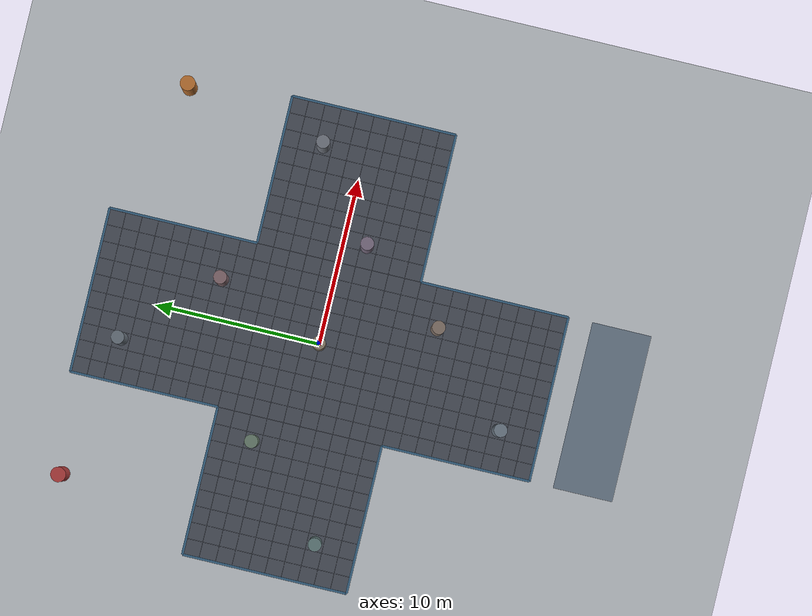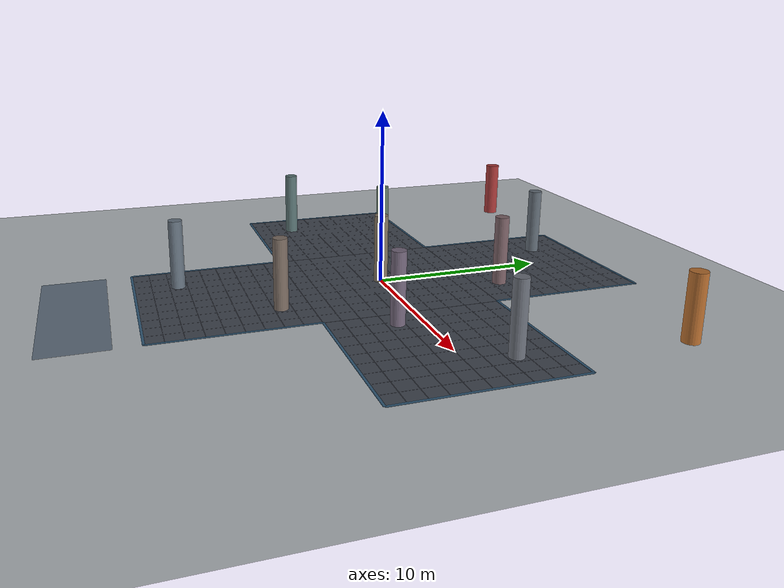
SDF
<?xml version="1.0" ?>
<sdf version="1.8">
  <world name="swarm_world">
    <!-- SPEEDUP SIMULATION: max_step_size=0.001 (1000Hz stable physics) & real_time_factor=1.0 -->
    <physics name="fast_physics" type="ode">
      <max_step_size>0.001</max_step_size>
      <real_time_factor>1.0</real_time_factor>
    </physics>

    <!-- SCENE CONFIG: Muted Architectural Lighting & Background -->
    <scene>
      <ambient>0.62 0.62 0.65 1.0</ambient>
      <background>0.78 0.80 0.83 1.0</background>
      <shadows>true</shadows>
      <grid>false</grid>
    </scene>

    <!-- PLUGIN INTI GAZEBO HARMONIC -->
    <plugin
      filename="gz-sim-physics-system"
      name="gz::sim::systems::Physics">
    </plugin>
    <plugin
      filename="gz-sim-user-commands-system"
      name="gz::sim::systems::UserCommands">
    </plugin>
    <plugin
      filename="gz-sim-scene-broadcaster-system"
      name="gz::sim::systems::SceneBroadcaster">
    </plugin>
    <plugin
      filename="gz-sim-sensors-system"
      name="gz::sim::systems::Sensors">
      <render_engine>ogre2</render_engine>
    </plugin>
    <plugin
      filename="gz-sim-wind-effects-system"
      name="gz::sim::systems::WindEffects">
      <force_approximation_scaling_factor>0.25</force_approximation_scaling_factor>
    </plugin>

    <!-- MATAHARI (SUN) - Soft Balanced Illumination -->
    <light type="directional" name="sun">
      <cast_shadows>true</cast_shadows>
      <pose>0 0 30 0 0 0</pose>
      <diffuse>0.85 0.85 0.87 1</diffuse>
      <specular>0.2 0.2 0.2 1</specular>
      <attenuation>
        <range>1000</range>
        <constant>0.9</constant>
        <linear>0.01</linear>
        <quadratic>0.001</quadratic>
      </attenuation>
      <direction>-0.4 0.2 -0.9</direction>
    </light>

    <!-- LANTAI LUAR (NEUTRAL MATTE CONCRETE EXTERIOR) -->
    <model name="ground_plane">
      <static>true</static>
      <link name="link">
        <collision name="collision">
          <geometry>
            <plane>
              <normal>0 0 1</normal>
              <size>100 100</size>
            </plane>
          </geometry>
        </collision>
        <visual name="visual">
          <geometry>
            <plane>
              <normal>0 0 1</normal>
              <size>100 100</size>
            </plane>
          </geometry>
          <material>
            <ambient>0.70 0.72 0.74 1.0</ambient>
            <diffuse>0.70 0.72 0.74 1.0</diffuse>
            <specular>0.1 0.1 0.1 1.0</specular>
          </material>
        </visual>
      </link>
    </model>

    <!-- GUI TOP-VIEW CAMERA PRESET -->
    <gui fullscreen="0">
      <camera name="user_camera">
        <pose>0.0 0.0 38.0 0.0 1.5708 1.5708</pose>
        <view_controller>orbit</view_controller>
      </camera>
    </gui>

    <!-- STAGING PAD AREA (LANDASAN AWAL 7 DRONE DI Y = -18m) -->
    <model name="staging_pad">
      <static>true</static>
      <link name="pad_link">
        <visual name="pad_v">
          <pose>0.0 -17.25 0.003 0 0 0</pose>
          <geometry><box><size>10.0 3.5 0.005</size></box></geometry>
          <material>
            <ambient>0.26 0.28 0.32 1.0</ambient>
            <diffuse>0.26 0.28 0.32 1.0</diffuse>
          </material>
        </visual>
        <visual name="pad_border">
          <pose>0.0 -17.25 0.005 0 0 0</pose>
          <geometry><box><size>10.1 3.6 0.003</size></box></geometry>
          <material>
            <ambient>0.38 0.44 0.50 1.0</ambient>
            <diffuse>0.38 0.44 0.50 1.0</diffuse>
          </material>
        </visual>
      </link>
    </model>
    <!-- VISUAL LANTAI ARENA & BORDER WILAYAH PLUS                           -->
    <model name="visual_region_floor_plus">
      <static>true</static>
      <link name="floor_link">
        <visual name="floor_box_0">
          <pose>0.0000 0.0000 0.003 0 0 0</pose>
          <geometry><box><size>10.0000 10.0000 0.005</size></box></geometry>
          <material>
            <ambient>0.26 0.28 0.32 1.0</ambient>
            <diffuse>0.26 0.28 0.32 1.0</diffuse>
            <specular>0.15 0.15 0.15 1.0</specular>
          </material>
        </visual>
        <visual name="floor_box_1">
          <pose>0.0000 9.5000 0.003 0 0 0</pose>
          <geometry><box><size>10.0000 9.0000 0.005</size></box></geometry>
          <material>
            <ambient>0.26 0.28 0.32 1.0</ambient>
            <diffuse>0.26 0.28 0.32 1.0</diffuse>
            <specular>0.15 0.15 0.15 1.0</specular>
          </material>
        </visual>
        <visual name="floor_box_2">
          <pose>0.0000 -9.5000 0.003 0 0 0</pose>
          <geometry><box><size>10.0000 9.0000 0.005</size></box></geometry>
          <material>
            <ambient>0.26 0.28 0.32 1.0</ambient>
            <diffuse>0.26 0.28 0.32 1.0</diffuse>
            <specular>0.15 0.15 0.15 1.0</specular>
          </material>
        </visual>
        <visual name="floor_box_3">
          <pose>9.5000 0.0000 0.003 0 0 0</pose>
          <geometry><box><size>9.0000 10.0000 0.005</size></box></geometry>
          <material>
            <ambient>0.26 0.28 0.32 1.0</ambient>
            <diffuse>0.26 0.28 0.32 1.0</diffuse>
            <specular>0.15 0.15 0.15 1.0</specular>
          </material>
        </visual>
        <visual name="floor_box_4">
          <pose>-9.5000 0.0000 0.003 0 0 0</pose>
          <geometry><box><size>9.0000 10.0000 0.005</size></box></geometry>
          <material>
            <ambient>0.26 0.28 0.32 1.0</ambient>
            <diffuse>0.26 0.28 0.32 1.0</diffuse>
            <specular>0.15 0.15 0.15 1.0</specular>
          </material>
        </visual>
        <visual name="grid_v_0">
          <pose>-5.00 0.0000 0.005 0 0 0</pose>
          <geometry><box><size>0.025 10.0000 0.003</size></box></geometry>
          <material>
            <ambient>0.33 0.35 0.39 1.0</ambient>
            <diffuse>0.33 0.35 0.39 1.0</diffuse>
          </material>
        </visual>
        <visual name="grid_v_1">
          <pose>-4.00 0.0000 0.005 0 0 0</pose>
          <geometry><box><size>0.025 10.0000 0.003</size></box></geometry>
          <material>
            <ambient>0.33 0.35 0.39 1.0</ambient>
            <diffuse>0.33 0.35 0.39 1.0</diffuse>
          </material>
        </visual>
        <visual name="grid_v_2">
          <pose>-3.00 0.0000 0.005 0 0 0</pose>
          <geometry><box><size>0.025 10.0000 0.003</size></box></geometry>
          <material>
            <ambient>0.33 0.35 0.39 1.0</ambient>
            <diffuse>0.33 0.35 0.39 1.0</diffuse>
          </material>
        </visual>
        <visual name="grid_v_3">
          <pose>-2.00 0.0000 0.005 0 0 0</pose>
          <geometry><box><size>0.025 10.0000 0.003</size></box></geometry>
          <material>
            <ambient>0.33 0.35 0.39 1.0</ambient>
            <diffuse>0.33 0.35 0.39 1.0</diffuse>
          </material>
        </visual>
        <visual name="grid_v_4">
          <pose>-1.00 0.0000 0.005 0 0 0</pose>
          <geometry><box><size>0.025 10.0000 0.003</size></box></geometry>
          <material>
            <ambient>0.33 0.35 0.39 1.0</ambient>
            <diffuse>0.33 0.35 0.39 1.0</diffuse>
          </material>
        </visual>
        <visual name="grid_v_5">
          <pose>0.00 0.0000 0.005 0 0 0</pose>
          <geometry><box><size>0.025 10.0000 0.003</size></box></geometry>
          <material>
            <ambient>0.33 0.35 0.39 1.0</ambient>
            <diffuse>0.33 0.35 0.39 1.0</diffuse>
          </material>
        </visual>
        <visual name="grid_v_6">
          <pose>1.00 0.0000 0.005 0 0 0</pose>
          <geometry><box><size>0.025 10.0000 0.003</size></box></geometry>
          <material>
            <ambient>0.33 0.35 0.39 1.0</ambient>
            <diffuse>0.33 0.35 0.39 1.0</diffuse>
          </material>
        </visual>
        <visual name="grid_v_7">
          <pose>2.00 0.0000 0.005 0 0 0</pose>
          <geometry><box><size>0.025 10.0000 0.003</size></box></geometry>
          <material>
            <ambient>0.33 0.35 0.39 1.0</ambient>
            <diffuse>0.33 0.35 0.39 1.0</diffuse>
          </material>
        </visual>
        <visual name="grid_v_8">
          <pose>3.00 0.0000 0.005 0 0 0</pose>
          <geometry><box><size>0.025 10.0000 0.003</size></box></geometry>
          <material>
            <ambient>0.33 0.35 0.39 1.0</ambient>
            <diffuse>0.33 0.35 0.39 1.0</diffuse>
          </material>
        </visual>
        <visual name="grid_v_9">
          <pose>4.00 0.0000 0.005 0 0 0</pose>
          <geometry><box><size>0.025 10.0000 0.003</size></box></geometry>
          <material>
            <ambient>0.33 0.35 0.39 1.0</ambient>
            <diffuse>0.33 0.35 0.39 1.0</diffuse>
          </material>
        </visual>
        <visual name="grid_v_10">
          <pose>5.00 0.0000 0.005 0 0 0</pose>
          <geometry><box><size>0.025 10.0000 0.003</size></box></geometry>
          <material>
            <ambient>0.33 0.35 0.39 1.0</ambient>
            <diffuse>0.33 0.35 0.39 1.0</diffuse>
          </material>
        </visual>
        <visual name="grid_h_11">
          <pose>0.0000 -5.00 0.005 0 0 0</pose>
          <geometry><box><size>10.0000 0.025 0.003</size></box></geometry>
          <material>
            <ambient>0.33 0.35 0.39 1.0</ambient>
            <diffuse>0.33 0.35 0.39 1.0</diffuse>
          </material>
        </visual>
        <visual name="grid_h_12">
          <pose>0.0000 -4.00 0.005 0 0 0</pose>
          <geometry><box><size>10.0000 0.025 0.003</size></box></geometry>
          <material>
            <ambient>0.33 0.35 0.39 1.0</ambient>
            <diffuse>0.33 0.35 0.39 1.0</diffuse>
          </material>
        </visual>
        <visual name="grid_h_13">
          <pose>0.0000 -3.00 0.005 0 0 0</pose>
          <geometry><box><size>10.0000 0.025 0.003</size></box></geometry>
          <material>
            <ambient>0.33 0.35 0.39 1.0</ambient>
            <diffuse>0.33 0.35 0.39 1.0</diffuse>
          </material>
        </visual>
        <visual name="grid_h_14">
          <pose>0.0000 -2.00 0.005 0 0 0</pose>
          <geometry><box><size>10.0000 0.025 0.003</size></box></geometry>
          <material>
            <ambient>0.33 0.35 0.39 1.0</ambient>
            <diffuse>0.33 0.35 0.39 1.0</diffuse>
          </material>
        </visual>
        <visual name="grid_h_15">
          <pose>0.0000 -1.00 0.005 0 0 0</pose>
          <geometry><box><size>10.0000 0.025 0.003</size></box></geometry>
          <material>
            <ambient>0.33 0.35 0.39 1.0</ambient>
            <diffuse>0.33 0.35 0.39 1.0</diffuse>
          </material>
        </visual>
        <visual name="grid_h_16">
          <pose>0.0000 0.00 0.005 0 0 0</pose>
          <geometry><box><size>10.0000 0.025 0.003</size></box></geometry>
          <material>
            <ambient>0.33 0.35 0.39 1.0</ambient>
            <diffuse>0.33 0.35 0.39 1.0</diffuse>
          </material>
        </visual>
        <visual name="grid_h_17">
          <pose>0.0000 1.00 0.005 0 0 0</pose>
          <geometry><box><size>10.0000 0.025 0.003</size></box></geometry>
          <material>
            <ambient>0.33 0.35 0.39 1.0</ambient>
            <diffuse>0.33 0.35 0.39 1.0</diffuse>
          </material>
        </visual>
        <visual name="grid_h_18">
          <pose>0.0000 2.00 0.005 0 0 0</pose>
          <geometry><box><size>10.0000 0.025 0.003</size></box></geometry>
          <material>
            <ambient>0.33 0.35 0.39 1.0</ambient>
            <diffuse>0.33 0.35 0.39 1.0</diffuse>
          </material>
        </visual>
        <visual name="grid_h_19">
          <pose>0.0000 3.00 0.005 0 0 0</pose>
          <geometry><box><size>10.0000 0.025 0.003</size></box></geometry>
          <material>
            <ambient>0.33 0.35 0.39 1.0</ambient>
            <diffuse>0.33 0.35 0.39 1.0</diffuse>
          </material>
        </visual>
        <visual name="grid_h_20">
          <pose>0.0000 4.00 0.005 0 0 0</pose>
          <geometry><box><size>10.0000 0.025 0.003</size></box></geometry>
          <material>
            <ambient>0.33 0.35 0.39 1.0</ambient>
            <diffuse>0.33 0.35 0.39 1.0</diffuse>
          </material>
        </visual>
        <visual name="grid_h_21">
          <pose>0.0000 5.00 0.005 0 0 0</pose>
          <geometry><box><size>10.0000 0.025 0.003</size></box></geometry>
          <material>
            <ambient>0.33 0.35 0.39 1.0</ambient>
            <diffuse>0.33 0.35 0.39 1.0</diffuse>
          </material>
        </visual>
        <visual name="grid_v_22">
          <pose>-5.00 9.5000 0.005 0 0 0</pose>
          <geometry><box><size>0.025 9.0000 0.003</size></box></geometry>
          <material>
            <ambient>0.33 0.35 0.39 1.0</ambient>
            <diffuse>0.33 0.35 0.39 1.0</diffuse>
          </material>
        </visual>
        <visual name="grid_v_23">
          <pose>-4.00 9.5000 0.005 0 0 0</pose>
          <geometry><box><size>0.025 9.0000 0.003</size></box></geometry>
          <material>
            <ambient>0.33 0.35 0.39 1.0</ambient>
            <diffuse>0.33 0.35 0.39 1.0</diffuse>
          </material>
        </visual>
        <visual name="grid_v_24">
          <pose>-3.00 9.5000 0.005 0 0 0</pose>
          <geometry><box><size>0.025 9.0000 0.003</size></box></geometry>
          <material>
            <ambient>0.33 0.35 0.39 1.0</ambient>
            <diffuse>0.33 0.35 0.39 1.0</diffuse>
          </material>
        </visual>
        <visual name="grid_v_25">
          <pose>-2.00 9.5000 0.005 0 0 0</pose>
          <geometry><box><size>0.025 9.0000 0.003</size></box></geometry>
          <material>
            <ambient>0.33 0.35 0.39 1.0</ambient>
            <diffuse>0.33 0.35 0.39 1.0</diffuse>
          </material>
        </visual>
        <visual name="grid_v_26">
          <pose>-1.00 9.5000 0.005 0 0 0</pose>
          <geometry><box><size>0.025 9.0000 0.003</size></box></geometry>
          <material>
            <ambient>0.33 0.35 0.39 1.0</ambient>
            <diffuse>0.33 0.35 0.39 1.0</diffuse>
          </material>
        </visual>
        <visual name="grid_v_27">
          <pose>0.00 9.5000 0.005 0 0 0</pose>
          <geometry><box><size>0.025 9.0000 0.003</size></box></geometry>
          <material>
            <ambient>0.33 0.35 0.39 1.0</ambient>
            <diffuse>0.33 0.35 0.39 1.0</diffuse>
          </material>
        </visual>
        <visual name="grid_v_28">
          <pose>1.00 9.5000 0.005 0 0 0</pose>
          <geometry><box><size>0.025 9.0000 0.003</size></box></geometry>
          <material>
            <ambient>0.33 0.35 0.39 1.0</ambient>
            <diffuse>0.33 0.35 0.39 1.0</diffuse>
          </material>
        </visual>
        <visual name="grid_v_29">
          <pose>2.00 9.5000 0.005 0 0 0</pose>
          <geometry><box><size>0.025 9.0000 0.003</size></box></geometry>
          <material>
            <ambient>0.33 0.35 0.39 1.0</ambient>
            <diffuse>0.33 0.35 0.39 1.0</diffuse>
          </material>
        </visual>
        <visual name="grid_v_30">
          <pose>3.00 9.5000 0.005 0 0 0</pose>
          <geometry><box><size>0.025 9.0000 0.003</size></box></geometry>
          <material>
            <ambient>0.33 0.35 0.39 1.0</ambient>
            <diffuse>0.33 0.35 0.39 1.0</diffuse>
          </material>
        </visual>
        <visual name="grid_v_31">
          <pose>4.00 9.5000 0.005 0 0 0</pose>
          <geometry><box><size>0.025 9.0000 0.003</size></box></geometry>
          <material>
            <ambient>0.33 0.35 0.39 1.0</ambient>
            <diffuse>0.33 0.35 0.39 1.0</diffuse>
          </material>
        </visual>
        <visual name="grid_v_32">
          <pose>5.00 9.5000 0.005 0 0 0</pose>
          <geometry><box><size>0.025 9.0000 0.003</size></box></geometry>
          <material>
            <ambient>0.33 0.35 0.39 1.0</ambient>
            <diffuse>0.33 0.35 0.39 1.0</diffuse>
          </material>
        </visual>
        <visual name="grid_h_33">
          <pose>0.0000 5.00 0.005 0 0 0</pose>
          <geometry><box><size>10.0000 0.025 0.003</size></box></geometry>
          <material>
            <ambient>0.33 0.35 0.39 1.0</ambient>
            <diffuse>0.33 0.35 0.39 1.0</diffuse>
          </material>
        </visual>
        <visual name="grid_h_34">
          <pose>0.0000 6.00 0.005 0 0 0</pose>
          <geometry><box><size>10.0000 0.025 0.003</size></box></geometry>
          <material>
            <ambient>0.33 0.35 0.39 1.0</ambient>
            <diffuse>0.33 0.35 0.39 1.0</diffuse>
          </material>
        </visual>
        <visual name="grid_h_35">
          <pose>0.0000 7.00 0.005 0 0 0</pose>
          <geometry><box><size>10.0000 0.025 0.003</size></box></geometry>
          <material>
            <ambient>0.33 0.35 0.39 1.0</ambient>
            <diffuse>0.33 0.35 0.39 1.0</diffuse>
          </material>
        </visual>
        <visual name="grid_h_36">
          <pose>0.0000 8.00 0.005 0 0 0</pose>
          <geometry><box><size>10.0000 0.025 0.003</size></box></geometry>
          <material>
            <ambient>0.33 0.35 0.39 1.0</ambient>
            <diffuse>0.33 0.35 0.39 1.0</diffuse>
          </material>
        </visual>
        <visual name="grid_h_37">
          <pose>0.0000 9.00 0.005 0 0 0</pose>
          <geometry><box><size>10.0000 0.025 0.003</size></box></geometry>
          <material>
            <ambient>0.33 0.35 0.39 1.0</ambient>
            <diffuse>0.33 0.35 0.39 1.0</diffuse>
          </material>
        </visual>
        <visual name="grid_h_38">
          <pose>0.0000 10.00 0.005 0 0 0</pose>
          <geometry><box><size>10.0000 0.025 0.003</size></box></geometry>
          <material>
            <ambient>0.33 0.35 0.39 1.0</ambient>
            <diffuse>0.33 0.35 0.39 1.0</diffuse>
          </material>
        </visual>
        <visual name="grid_h_39">
          <pose>0.0000 11.00 0.005 0 0 0</pose>
          <geometry><box><size>10.0000 0.025 0.003</size></box></geometry>
          <material>
            <ambient>0.33 0.35 0.39 1.0</ambient>
            <diffuse>0.33 0.35 0.39 1.0</diffuse>
          </material>
        </visual>
        <visual name="grid_h_40">
          <pose>0.0000 12.00 0.005 0 0 0</pose>
          <geometry><box><size>10.0000 0.025 0.003</size></box></geometry>
          <material>
            <ambient>0.33 0.35 0.39 1.0</ambient>
            <diffuse>0.33 0.35 0.39 1.0</diffuse>
          </material>
        </visual>
        <visual name="grid_h_41">
          <pose>0.0000 13.00 0.005 0 0 0</pose>
          <geometry><box><size>10.0000 0.025 0.003</size></box></geometry>
          <material>
            <ambient>0.33 0.35 0.39 1.0</ambient>
            <diffuse>0.33 0.35 0.39 1.0</diffuse>
          </material>
        </visual>
        <visual name="grid_h_42">
          <pose>0.0000 14.00 0.005 0 0 0</pose>
          <geometry><box><size>10.0000 0.025 0.003</size></box></geometry>
          <material>
            <ambient>0.33 0.35 0.39 1.0</ambient>
            <diffuse>0.33 0.35 0.39 1.0</diffuse>
          </material>
        </visual>
        <visual name="grid_v_43">
          <pose>-5.00 -9.5000 0.005 0 0 0</pose>
          <geometry><box><size>0.025 9.0000 0.003</size></box></geometry>
          <material>
            <ambient>0.33 0.35 0.39 1.0</ambient>
            <diffuse>0.33 0.35 0.39 1.0</diffuse>
          </material>
        </visual>
        <visual name="grid_v_44">
          <pose>-4.00 -9.5000 0.005 0 0 0</pose>
          <geometry><box><size>0.025 9.0000 0.003</size></box></geometry>
          <material>
            <ambient>0.33 0.35 0.39 1.0</ambient>
            <diffuse>0.33 0.35 0.39 1.0</diffuse>
          </material>
        </visual>
        <visual name="grid_v_45">
          <pose>-3.00 -9.5000 0.005 0 0 0</pose>
          <geometry><box><size>0.025 9.0000 0.003</size></box></geometry>
          <material>
            <ambient>0.33 0.35 0.39 1.0</ambient>
            <diffuse>0.33 0.35 0.39 1.0</diffuse>
          </material>
        </visual>
        <visual name="grid_v_46">
          <pose>-2.00 -9.5000 0.005 0 0 0</pose>
          <geometry><box><size>0.025 9.0000 0.003</size></box></geometry>
          <material>
            <ambient>0.33 0.35 0.39 1.0</ambient>
            <diffuse>0.33 0.35 0.39 1.0</diffuse>
          </material>
        </visual>
        <visual name="grid_v_47">
          <pose>-1.00 -9.5000 0.005 0 0 0</pose>
          <geometry><box><size>0.025 9.0000 0.003</size></box></geometry>
          <material>
            <ambient>0.33 0.35 0.39 1.0</ambient>
            <diffuse>0.33 0.35 0.39 1.0</diffuse>
          </material>
        </visual>
        <visual name="grid_v_48">
          <pose>0.00 -9.5000 0.005 0 0 0</pose>
          <geometry><box><size>0.025 9.0000 0.003</size></box></geometry>
          <material>
            <ambient>0.33 0.35 0.39 1.0</ambient>
            <diffuse>0.33 0.35 0.39 1.0</diffuse>
          </material>
        </visual>
        <visual name="grid_v_49">
          <pose>1.00 -9.5000 0.005 0 0 0</pose>
          <geometry><box><size>0.025 9.0000 0.003</size></box></geometry>
          <material>
            <ambient>0.33 0.35 0.39 1.0</ambient>
            <diffuse>0.33 0.35 0.39 1.0</diffuse>
          </material>
        </visual>
        <visual name="grid_v_50">
          <pose>2.00 -9.5000 0.005 0 0 0</pose>
          <geometry><box><size>0.025 9.0000 0.003</size></box></geometry>
          <material>
            <ambient>0.33 0.35 0.39 1.0</ambient>
            <diffuse>0.33 0.35 0.39 1.0</diffuse>
          </material>
        </visual>
        <visual name="grid_v_51">
          <pose>3.00 -9.5000 0.005 0 0 0</pose>
          <geometry><box><size>0.025 9.0000 0.003</size></box></geometry>
          <material>
            <ambient>0.33 0.35 0.39 1.0</ambient>
            <diffuse>0.33 0.35 0.39 1.0</diffuse>
          </material>
        </visual>
        <visual name="grid_v_52">
          <pose>4.00 -9.5000 0.005 0 0 0</pose>
          <geometry><box><size>0.025 9.0000 0.003</size></box></geometry>
          <material>
            <ambient>0.33 0.35 0.39 1.0</ambient>
            <diffuse>0.33 0.35 0.39 1.0</diffuse>
          </material>
        </visual>
        <visual name="grid_v_53">
          <pose>5.00 -9.5000 0.005 0 0 0</pose>
          <geometry><box><size>0.025 9.0000 0.003</size></box></geometry>
          <material>
            <ambient>0.33 0.35 0.39 1.0</ambient>
            <diffuse>0.33 0.35 0.39 1.0</diffuse>
          </material>
        </visual>
        <visual name="grid_h_54">
          <pose>0.0000 -14.00 0.005 0 0 0</pose>
          <geometry><box><size>10.0000 0.025 0.003</size></box></geometry>
          <material>
            <ambient>0.33 0.35 0.39 1.0</ambient>
            <diffuse>0.33 0.35 0.39 1.0</diffuse>
          </material>
        </visual>
        <visual name="grid_h_55">
          <pose>0.0000 -13.00 0.005 0 0 0</pose>
          <geometry><box><size>10.0000 0.025 0.003</size></box></geometry>
          <material>
            <ambient>0.33 0.35 0.39 1.0</ambient>
            <diffuse>0.33 0.35 0.39 1.0</diffuse>
          </material>
        </visual>
        <visual name="grid_h_56">
          <pose>0.0000 -12.00 0.005 0 0 0</pose>
          <geometry><box><size>10.0000 0.025 0.003</size></box></geometry>
          <material>
            <ambient>0.33 0.35 0.39 1.0</ambient>
            <diffuse>0.33 0.35 0.39 1.0</diffuse>
          </material>
        </visual>
        <visual name="grid_h_57">
          <pose>0.0000 -11.00 0.005 0 0 0</pose>
          <geometry><box><size>10.0000 0.025 0.003</size></box></geometry>
          <material>
            <ambient>0.33 0.35 0.39 1.0</ambient>
            <diffuse>0.33 0.35 0.39 1.0</diffuse>
          </material>
        </visual>
        <visual name="grid_h_58">
          <pose>0.0000 -10.00 0.005 0 0 0</pose>
          <geometry><box><size>10.0000 0.025 0.003</size></box></geometry>
          <material>
            <ambient>0.33 0.35 0.39 1.0</ambient>
            <diffuse>0.33 0.35 0.39 1.0</diffuse>
          </material>
        </visual>
        <visual name="grid_h_59">
          <pose>0.0000 -9.00 0.005 0 0 0</pose>
          <geometry><box><size>10.0000 0.025 0.003</size></box></geometry>
          <material>
            <ambient>0.33 0.35 0.39 1.0</ambient>
            <diffuse>0.33 0.35 0.39 1.0</diffuse>
          </material>
        </visual>
        <visual name="grid_h_60">
          <pose>0.0000 -8.00 0.005 0 0 0</pose>
          <geometry><box><size>10.0000 0.025 0.003</size></box></geometry>
          <material>
            <ambient>0.33 0.35 0.39 1.0</ambient>
            <diffuse>0.33 0.35 0.39 1.0</diffuse>
          </material>
        </visual>
        <visual name="grid_h_61">
          <pose>0.0000 -7.00 0.005 0 0 0</pose>
          <geometry><box><size>10.0000 0.025 0.003</size></box></geometry>
          <material>
            <ambient>0.33 0.35 0.39 1.0</ambient>
            <diffuse>0.33 0.35 0.39 1.0</diffuse>
          </material>
        </visual>
        <visual name="grid_h_62">
          <pose>0.0000 -6.00 0.005 0 0 0</pose>
          <geometry><box><size>10.0000 0.025 0.003</size></box></geometry>
          <material>
            <ambient>0.33 0.35 0.39 1.0</ambient>
            <diffuse>0.33 0.35 0.39 1.0</diffuse>
          </material>
        </visual>
        <visual name="grid_h_63">
          <pose>0.0000 -5.00 0.005 0 0 0</pose>
          <geometry><box><size>10.0000 0.025 0.003</size></box></geometry>
          <material>
            <ambient>0.33 0.35 0.39 1.0</ambient>
            <diffuse>0.33 0.35 0.39 1.0</diffuse>
          </material>
        </visual>
        <visual name="grid_v_64">
          <pose>5.00 0.0000 0.005 0 0 0</pose>
          <geometry><box><size>0.025 10.0000 0.003</size></box></geometry>
          <material>
            <ambient>0.33 0.35 0.39 1.0</ambient>
            <diffuse>0.33 0.35 0.39 1.0</diffuse>
          </material>
        </visual>
        <visual name="grid_v_65">
          <pose>6.00 0.0000 0.005 0 0 0</pose>
          <geometry><box><size>0.025 10.0000 0.003</size></box></geometry>
          <material>
            <ambient>0.33 0.35 0.39 1.0</ambient>
            <diffuse>0.33 0.35 0.39 1.0</diffuse>
          </material>
        </visual>
        <visual name="grid_v_66">
          <pose>7.00 0.0000 0.005 0 0 0</pose>
          <geometry><box><size>0.025 10.0000 0.003</size></box></geometry>
          <material>
            <ambient>0.33 0.35 0.39 1.0</ambient>
            <diffuse>0.33 0.35 0.39 1.0</diffuse>
          </material>
        </visual>
        <visual name="grid_v_67">
          <pose>8.00 0.0000 0.005 0 0 0</pose>
          <geometry><box><size>0.025 10.0000 0.003</size></box></geometry>
          <material>
            <ambient>0.33 0.35 0.39 1.0</ambient>
            <diffuse>0.33 0.35 0.39 1.0</diffuse>
          </material>
        </visual>
        <visual name="grid_v_68">
          <pose>9.00 0.0000 0.005 0 0 0</pose>
          <geometry><box><size>0.025 10.0000 0.003</size></box></geometry>
          <material>
            <ambient>0.33 0.35 0.39 1.0</ambient>
            <diffuse>0.33 0.35 0.39 1.0</diffuse>
          </material>
        </visual>
        <visual name="grid_v_69">
          <pose>10.00 0.0000 0.005 0 0 0</pose>
          <geometry><box><size>0.025 10.0000 0.003</size></box></geometry>
          <material>
            <ambient>0.33 0.35 0.39 1.0</ambient>
            <diffuse>0.33 0.35 0.39 1.0</diffuse>
          </material>
        </visual>
        <visual name="grid_v_70">
          <pose>11.00 0.0000 0.005 0 0 0</pose>
          <geometry><box><size>0.025 10.0000 0.003</size></box></geometry>
          <material>
            <ambient>0.33 0.35 0.39 1.0</ambient>
            <diffuse>0.33 0.35 0.39 1.0</diffuse>
          </material>
        </visual>
        <visual name="grid_v_71">
          <pose>12.00 0.0000 0.005 0 0 0</pose>
          <geometry><box><size>0.025 10.0000 0.003</size></box></geometry>
          <material>
            <ambient>0.33 0.35 0.39 1.0</ambient>
            <diffuse>0.33 0.35 0.39 1.0</diffuse>
          </material>
        </visual>
        <visual name="grid_v_72">
          <pose>13.00 0.0000 0.005 0 0 0</pose>
          <geometry><box><size>0.025 10.0000 0.003</size></box></geometry>
          <material>
            <ambient>0.33 0.35 0.39 1.0</ambient>
            <diffuse>0.33 0.35 0.39 1.0</diffuse>
          </material>
        </visual>
        <visual name="grid_v_73">
          <pose>14.00 0.0000 0.005 0 0 0</pose>
          <geometry><box><size>0.025 10.0000 0.003</size></box></geometry>
          <material>
            <ambient>0.33 0.35 0.39 1.0</ambient>
            <diffuse>0.33 0.35 0.39 1.0</diffuse>
          </material>
        </visual>
        <visual name="grid_h_74">
          <pose>9.5000 -5.00 0.005 0 0 0</pose>
          <geometry><box><size>9.0000 0.025 0.003</size></box></geometry>
          <material>
            <ambient>0.33 0.35 0.39 1.0</ambient>
            <diffuse>0.33 0.35 0.39 1.0</diffuse>
          </material>
        </visual>
        <visual name="grid_h_75">
          <pose>9.5000 -4.00 0.005 0 0 0</pose>
          <geometry><box><size>9.0000 0.025 0.003</size></box></geometry>
          <material>
            <ambient>0.33 0.35 0.39 1.0</ambient>
            <diffuse>0.33 0.35 0.39 1.0</diffuse>
          </material>
        </visual>
        <visual name="grid_h_76">
          <pose>9.5000 -3.00 0.005 0 0 0</pose>
          <geometry><box><size>9.0000 0.025 0.003</size></box></geometry>
          <material>
            <ambient>0.33 0.35 0.39 1.0</ambient>
            <diffuse>0.33 0.35 0.39 1.0</diffuse>
          </material>
        </visual>
        <visual name="grid_h_77">
          <pose>9.5000 -2.00 0.005 0 0 0</pose>
          <geometry><box><size>9.0000 0.025 0.003</size></box></geometry>
          <material>
            <ambient>0.33 0.35 0.39 1.0</ambient>
            <diffuse>0.33 0.35 0.39 1.0</diffuse>
          </material>
        </visual>
        <visual name="grid_h_78">
          <pose>9.5000 -1.00 0.005 0 0 0</pose>
          <geometry><box><size>9.0000 0.025 0.003</size></box></geometry>
          <material>
            <ambient>0.33 0.35 0.39 1.0</ambient>
            <diffuse>0.33 0.35 0.39 1.0</diffuse>
          </material>
        </visual>
        <visual name="grid_h_79">
          <pose>9.5000 0.00 0.005 0 0 0</pose>
          <geometry><box><size>9.0000 0.025 0.003</size></box></geometry>
          <material>
            <ambient>0.33 0.35 0.39 1.0</ambient>
            <diffuse>0.33 0.35 0.39 1.0</diffuse>
          </material>
        </visual>
        <visual name="grid_h_80">
          <pose>9.5000 1.00 0.005 0 0 0</pose>
          <geometry><box><size>9.0000 0.025 0.003</size></box></geometry>
          <material>
            <ambient>0.33 0.35 0.39 1.0</ambient>
            <diffuse>0.33 0.35 0.39 1.0</diffuse>
          </material>
        </visual>
        <visual name="grid_h_81">
          <pose>9.5000 2.00 0.005 0 0 0</pose>
          <geometry><box><size>9.0000 0.025 0.003</size></box></geometry>
          <material>
            <ambient>0.33 0.35 0.39 1.0</ambient>
            <diffuse>0.33 0.35 0.39 1.0</diffuse>
          </material>
        </visual>
        <visual name="grid_h_82">
          <pose>9.5000 3.00 0.005 0 0 0</pose>
          <geometry><box><size>9.0000 0.025 0.003</size></box></geometry>
          <material>
            <ambient>0.33 0.35 0.39 1.0</ambient>
            <diffuse>0.33 0.35 0.39 1.0</diffuse>
          </material>
        </visual>
        <visual name="grid_h_83">
          <pose>9.5000 4.00 0.005 0 0 0</pose>
          <geometry><box><size>9.0000 0.025 0.003</size></box></geometry>
          <material>
            <ambient>0.33 0.35 0.39 1.0</ambient>
            <diffuse>0.33 0.35 0.39 1.0</diffuse>
          </material>
        </visual>
        <visual name="grid_h_84">
          <pose>9.5000 5.00 0.005 0 0 0</pose>
          <geometry><box><size>9.0000 0.025 0.003</size></box></geometry>
          <material>
            <ambient>0.33 0.35 0.39 1.0</ambient>
            <diffuse>0.33 0.35 0.39 1.0</diffuse>
          </material>
        </visual>
        <visual name="grid_v_85">
          <pose>-14.00 0.0000 0.005 0 0 0</pose>
          <geometry><box><size>0.025 10.0000 0.003</size></box></geometry>
          <material>
            <ambient>0.33 0.35 0.39 1.0</ambient>
            <diffuse>0.33 0.35 0.39 1.0</diffuse>
          </material>
        </visual>
        <visual name="grid_v_86">
          <pose>-13.00 0.0000 0.005 0 0 0</pose>
          <geometry><box><size>0.025 10.0000 0.003</size></box></geometry>
          <material>
            <ambient>0.33 0.35 0.39 1.0</ambient>
            <diffuse>0.33 0.35 0.39 1.0</diffuse>
          </material>
        </visual>
        <visual name="grid_v_87">
          <pose>-12.00 0.0000 0.005 0 0 0</pose>
          <geometry><box><size>0.025 10.0000 0.003</size></box></geometry>
          <material>
            <ambient>0.33 0.35 0.39 1.0</ambient>
            <diffuse>0.33 0.35 0.39 1.0</diffuse>
          </material>
        </visual>
        <visual name="grid_v_88">
          <pose>-11.00 0.0000 0.005 0 0 0</pose>
          <geometry><box><size>0.025 10.0000 0.003</size></box></geometry>
          <material>
            <ambient>0.33 0.35 0.39 1.0</ambient>
            <diffuse>0.33 0.35 0.39 1.0</diffuse>
          </material>
        </visual>
        <visual name="grid_v_89">
          <pose>-10.00 0.0000 0.005 0 0 0</pose>
          <geometry><box><size>0.025 10.0000 0.003</size></box></geometry>
          <material>
            <ambient>0.33 0.35 0.39 1.0</ambient>
            <diffuse>0.33 0.35 0.39 1.0</diffuse>
          </material>
        </visual>
        <visual name="grid_v_90">
          <pose>-9.00 0.0000 0.005 0 0 0</pose>
          <geometry><box><size>0.025 10.0000 0.003</size></box></geometry>
          <material>
            <ambient>0.33 0.35 0.39 1.0</ambient>
            <diffuse>0.33 0.35 0.39 1.0</diffuse>
          </material>
        </visual>
        <visual name="grid_v_91">
          <pose>-8.00 0.0000 0.005 0 0 0</pose>
          <geometry><box><size>0.025 10.0000 0.003</size></box></geometry>
          <material>
            <ambient>0.33 0.35 0.39 1.0</ambient>
            <diffuse>0.33 0.35 0.39 1.0</diffuse>
          </material>
        </visual>
        <visual name="grid_v_92">
          <pose>-7.00 0.0000 0.005 0 0 0</pose>
          <geometry><box><size>0.025 10.0000 0.003</size></box></geometry>
          <material>
            <ambient>0.33 0.35 0.39 1.0</ambient>
            <diffuse>0.33 0.35 0.39 1.0</diffuse>
          </material>
        </visual>
        <visual name="grid_v_93">
          <pose>-6.00 0.0000 0.005 0 0 0</pose>
          <geometry><box><size>0.025 10.0000 0.003</size></box></geometry>
          <material>
            <ambient>0.33 0.35 0.39 1.0</ambient>
            <diffuse>0.33 0.35 0.39 1.0</diffuse>
          </material>
        </visual>
        <visual name="grid_v_94">
          <pose>-5.00 0.0000 0.005 0 0 0</pose>
          <geometry><box><size>0.025 10.0000 0.003</size></box></geometry>
          <material>
            <ambient>0.33 0.35 0.39 1.0</ambient>
            <diffuse>0.33 0.35 0.39 1.0</diffuse>
          </material>
        </visual>
        <visual name="grid_h_95">
          <pose>-9.5000 -5.00 0.005 0 0 0</pose>
          <geometry><box><size>9.0000 0.025 0.003</size></box></geometry>
          <material>
            <ambient>0.33 0.35 0.39 1.0</ambient>
            <diffuse>0.33 0.35 0.39 1.0</diffuse>
          </material>
        </visual>
        <visual name="grid_h_96">
          <pose>-9.5000 -4.00 0.005 0 0 0</pose>
          <geometry><box><size>9.0000 0.025 0.003</size></box></geometry>
          <material>
            <ambient>0.33 0.35 0.39 1.0</ambient>
            <diffuse>0.33 0.35 0.39 1.0</diffuse>
          </material>
        </visual>
        <visual name="grid_h_97">
          <pose>-9.5000 -3.00 0.005 0 0 0</pose>
          <geometry><box><size>9.0000 0.025 0.003</size></box></geometry>
          <material>
            <ambient>0.33 0.35 0.39 1.0</ambient>
            <diffuse>0.33 0.35 0.39 1.0</diffuse>
          </material>
        </visual>
        <visual name="grid_h_98">
          <pose>-9.5000 -2.00 0.005 0 0 0</pose>
          <geometry><box><size>9.0000 0.025 0.003</size></box></geometry>
          <material>
            <ambient>0.33 0.35 0.39 1.0</ambient>
            <diffuse>0.33 0.35 0.39 1.0</diffuse>
          </material>
        </visual>
        <visual name="grid_h_99">
          <pose>-9.5000 -1.00 0.005 0 0 0</pose>
          <geometry><box><size>9.0000 0.025 0.003</size></box></geometry>
          <material>
            <ambient>0.33 0.35 0.39 1.0</ambient>
            <diffuse>0.33 0.35 0.39 1.0</diffuse>
          </material>
        </visual>
        <visual name="grid_h_100">
          <pose>-9.5000 0.00 0.005 0 0 0</pose>
          <geometry><box><size>9.0000 0.025 0.003</size></box></geometry>
          <material>
            <ambient>0.33 0.35 0.39 1.0</ambient>
            <diffuse>0.33 0.35 0.39 1.0</diffuse>
          </material>
        </visual>
        <visual name="grid_h_101">
          <pose>-9.5000 1.00 0.005 0 0 0</pose>
          <geometry><box><size>9.0000 0.025 0.003</size></box></geometry>
          <material>
            <ambient>0.33 0.35 0.39 1.0</ambient>
            <diffuse>0.33 0.35 0.39 1.0</diffuse>
          </material>
        </visual>
        <visual name="grid_h_102">
          <pose>-9.5000 2.00 0.005 0 0 0</pose>
          <geometry><box><size>9.0000 0.025 0.003</size></box></geometry>
          <material>
            <ambient>0.33 0.35 0.39 1.0</ambient>
            <diffuse>0.33 0.35 0.39 1.0</diffuse>
          </material>
        </visual>
        <visual name="grid_h_103">
          <pose>-9.5000 3.00 0.005 0 0 0</pose>
          <geometry><box><size>9.0000 0.025 0.003</size></box></geometry>
          <material>
            <ambient>0.33 0.35 0.39 1.0</ambient>
            <diffuse>0.33 0.35 0.39 1.0</diffuse>
          </material>
        </visual>
        <visual name="grid_h_104">
          <pose>-9.5000 4.00 0.005 0 0 0</pose>
          <geometry><box><size>9.0000 0.025 0.003</size></box></geometry>
          <material>
            <ambient>0.33 0.35 0.39 1.0</ambient>
            <diffuse>0.33 0.35 0.39 1.0</diffuse>
          </material>
        </visual>
        <visual name="grid_h_105">
          <pose>-9.5000 5.00 0.005 0 0 0</pose>
          <geometry><box><size>9.0000 0.025 0.003</size></box></geometry>
          <material>
            <ambient>0.33 0.35 0.39 1.0</ambient>
            <diffuse>0.33 0.35 0.39 1.0</diffuse>
          </material>
        </visual>
      </link>
    </model>

    <!-- BORDER PEMBATAS KELILING (MUTED STEEL BLUE / SLATE CURB) -->
    <model name="region_perimeter_border_plus">
      <static>true</static>
      <link name="border_link">
        <visual name="border_edge_0">
          <pose>0.0000 -14.0000 0.015 0 0 0.0000</pose>
          <geometry><box><size>10.0000 0.14 0.025</size></box></geometry>
          <material>
            <ambient>0.20 0.36 0.48 1.0</ambient>
            <diffuse>0.20 0.36 0.48 1.0</diffuse>
            <specular>0.25 0.25 0.25 1.0</specular>
          </material>
        </visual>
        <visual name="border_edge_1">
          <pose>5.0000 -9.5000 0.015 0 0 1.5708</pose>
          <geometry><box><size>9.0000 0.14 0.025</size></box></geometry>
          <material>
            <ambient>0.20 0.36 0.48 1.0</ambient>
            <diffuse>0.20 0.36 0.48 1.0</diffuse>
            <specular>0.25 0.25 0.25 1.0</specular>
          </material>
        </visual>
        <visual name="border_edge_2">
          <pose>9.5000 -5.0000 0.015 0 0 0.0000</pose>
          <geometry><box><size>9.0000 0.14 0.025</size></box></geometry>
          <material>
            <ambient>0.20 0.36 0.48 1.0</ambient>
            <diffuse>0.20 0.36 0.48 1.0</diffuse>
            <specular>0.25 0.25 0.25 1.0</specular>
          </material>
        </visual>
        <visual name="border_edge_3">
          <pose>14.0000 0.0000 0.015 0 0 1.5708</pose>
          <geometry><box><size>10.0000 0.14 0.025</size></box></geometry>
          <material>
            <ambient>0.20 0.36 0.48 1.0</ambient>
            <diffuse>0.20 0.36 0.48 1.0</diffuse>
            <specular>0.25 0.25 0.25 1.0</specular>
          </material>
        </visual>
        <visual name="border_edge_4">
          <pose>9.5000 5.0000 0.015 0 0 3.1416</pose>
          <geometry><box><size>9.0000 0.14 0.025</size></box></geometry>
          <material>
            <ambient>0.20 0.36 0.48 1.0</ambient>
            <diffuse>0.20 0.36 0.48 1.0</diffuse>
            <specular>0.25 0.25 0.25 1.0</specular>
          </material>
        </visual>
        <visual name="border_edge_5">
          <pose>5.0000 9.5000 0.015 0 0 1.5708</pose>
          <geometry><box><size>9.0000 0.14 0.025</size></box></geometry>
          <material>
            <ambient>0.20 0.36 0.48 1.0</ambient>
            <diffuse>0.20 0.36 0.48 1.0</diffuse>
            <specular>0.25 0.25 0.25 1.0</specular>
          </material>
        </visual>
        <visual name="border_edge_6">
          <pose>0.0000 14.0000 0.015 0 0 3.1416</pose>
          <geometry><box><size>10.0000 0.14 0.025</size></box></geometry>
          <material>
            <ambient>0.20 0.36 0.48 1.0</ambient>
            <diffuse>0.20 0.36 0.48 1.0</diffuse>
            <specular>0.25 0.25 0.25 1.0</specular>
          </material>
        </visual>
        <visual name="border_edge_7">
          <pose>-5.0000 9.5000 0.015 0 0 -1.5708</pose>
          <geometry><box><size>9.0000 0.14 0.025</size></box></geometry>
          <material>
            <ambient>0.20 0.36 0.48 1.0</ambient>
            <diffuse>0.20 0.36 0.48 1.0</diffuse>
            <specular>0.25 0.25 0.25 1.0</specular>
          </material>
        </visual>
        <visual name="border_edge_8">
          <pose>-9.5000 5.0000 0.015 0 0 3.1416</pose>
          <geometry><box><size>9.0000 0.14 0.025</size></box></geometry>
          <material>
            <ambient>0.20 0.36 0.48 1.0</ambient>
            <diffuse>0.20 0.36 0.48 1.0</diffuse>
            <specular>0.25 0.25 0.25 1.0</specular>
          </material>
        </visual>
        <visual name="border_edge_9">
          <pose>-14.0000 0.0000 0.015 0 0 -1.5708</pose>
          <geometry><box><size>10.0000 0.14 0.025</size></box></geometry>
          <material>
            <ambient>0.20 0.36 0.48 1.0</ambient>
            <diffuse>0.20 0.36 0.48 1.0</diffuse>
            <specular>0.25 0.25 0.25 1.0</specular>
          </material>
        </visual>
        <visual name="border_edge_10">
          <pose>-9.5000 -5.0000 0.015 0 0 0.0000</pose>
          <geometry><box><size>9.0000 0.14 0.025</size></box></geometry>
          <material>
            <ambient>0.20 0.36 0.48 1.0</ambient>
            <diffuse>0.20 0.36 0.48 1.0</diffuse>
            <specular>0.25 0.25 0.25 1.0</specular>
          </material>
        </visual>
        <visual name="border_edge_11">
          <pose>-5.0000 -9.5000 0.015 0 0 -1.5708</pose>
          <geometry><box><size>9.0000 0.14 0.025</size></box></geometry>
          <material>
            <ambient>0.20 0.36 0.48 1.0</ambient>
            <diffuse>0.20 0.36 0.48 1.0</diffuse>
            <specular>0.25 0.25 0.25 1.0</specular>
          </material>
        </visual>
      </link>
    </model>
    <model name="static_obs_301">
      <static>true</static>
      <pose>-2.5000 -11.5000 2.0000 0 0 0</pose>
      <link name="link">
        <collision name="collision">
          <geometry><cylinder><radius>0.4000</radius><length>4.0000</length></cylinder></geometry>
        </collision>
        <visual name="visual">
          <geometry><cylinder><radius>0.4000</radius><length>4.0000</length></cylinder></geometry>
          <material>
            <ambient>0.40 0.45 0.50 1.0</ambient>
            <diffuse>0.40 0.45 0.50 1.0</diffuse>
            <specular>0.3 0.3 0.3 1.0</specular>
          </material>
        </visual>
      </link>
    </model>

    <model name="static_obs_302">
      <static>true</static>
      <pose>2.5000 -6.6000 2.0000 0 0 0</pose>
      <link name="link">
        <collision name="collision">
          <geometry><cylinder><radius>0.4000</radius><length>4.0000</length></cylinder></geometry>
        </collision>
        <visual name="visual">
          <geometry><cylinder><radius>0.4000</radius><length>4.0000</length></cylinder></geometry>
          <material>
            <ambient>0.48 0.42 0.38 1.0</ambient>
            <diffuse>0.48 0.42 0.38 1.0</diffuse>
            <specular>0.3 0.3 0.3 1.0</specular>
          </material>
        </visual>
      </link>
    </model>

    <model name="static_obs_303">
      <static>true</static>
      <pose>-11.5000 -2.5000 2.0000 0 0 0</pose>
      <link name="link">
        <collision name="collision">
          <geometry><cylinder><radius>0.4000</radius><length>4.0000</length></cylinder></geometry>
        </collision>
        <visual name="visual">
          <geometry><cylinder><radius>0.4000</radius><length>4.0000</length></cylinder></geometry>
          <material>
            <ambient>0.35 0.45 0.45 1.0</ambient>
            <diffuse>0.35 0.45 0.45 1.0</diffuse>
            <specular>0.3 0.3 0.3 1.0</specular>
          </material>
        </visual>
      </link>
    </model>

    <model name="static_obs_304">
      <static>true</static>
      <pose>6.3000 -1.4000 2.0000 0 0 0</pose>
      <link name="link">
        <collision name="collision">
          <geometry><cylinder><radius>0.4000</radius><length>4.0000</length></cylinder></geometry>
        </collision>
        <visual name="visual">
          <geometry><cylinder><radius>0.4000</radius><length>4.0000</length></cylinder></geometry>
          <material>
            <ambient>0.45 0.40 0.48 1.0</ambient>
            <diffuse>0.45 0.40 0.48 1.0</diffuse>
            <specular>0.3 0.3 0.3 1.0</specular>
          </material>
        </visual>
      </link>
    </model>

    <model name="static_obs_305">
      <static>true</static>
      <pose>0.0000 -0.0000 2.0000 0 0 0</pose>
      <link name="link">
        <collision name="collision">
          <geometry><cylinder><radius>0.4000</radius><length>4.0000</length></cylinder></geometry>
        </collision>
        <visual name="visual">
          <geometry><cylinder><radius>0.4000</radius><length>4.0000</length></cylinder></geometry>
          <material>
            <ambient>0.50 0.45 0.38 1.0</ambient>
            <diffuse>0.50 0.45 0.38 1.0</diffuse>
            <specular>0.3 0.3 0.3 1.0</specular>
          </material>
        </visual>
      </link>
    </model>

    <model name="static_obs_306">
      <static>true</static>
      <pose>-6.5000 2.5000 2.0000 0 0 0</pose>
      <link name="link">
        <collision name="collision">
          <geometry><cylinder><radius>0.4000</radius><length>4.0000</length></cylinder></geometry>
        </collision>
        <visual name="visual">
          <geometry><cylinder><radius>0.4000</radius><length>4.0000</length></cylinder></geometry>
          <material>
            <ambient>0.38 0.46 0.40 1.0</ambient>
            <diffuse>0.38 0.46 0.40 1.0</diffuse>
            <specular>0.3 0.3 0.3 1.0</specular>
          </material>
        </visual>
      </link>
    </model>

    <model name="static_obs_307">
      <static>true</static>
      <pose>11.5000 2.5000 2.0000 0 0 0</pose>
      <link name="link">
        <collision name="collision">
          <geometry><cylinder><radius>0.4000</radius><length>4.0000</length></cylinder></geometry>
        </collision>
        <visual name="visual">
          <geometry><cylinder><radius>0.4000</radius><length>4.0000</length></cylinder></geometry>
          <material>
            <ambient>0.42 0.44 0.48 1.0</ambient>
            <diffuse>0.42 0.44 0.48 1.0</diffuse>
            <specular>0.3 0.3 0.3 1.0</specular>
          </material>
        </visual>
      </link>
    </model>

    <model name="static_obs_308">
      <static>true</static>
      <pose>2.4000 6.5000 2.0000 0 0 0</pose>
      <link name="link">
        <collision name="collision">
          <geometry><cylinder><radius>0.4000</radius><length>4.0000</length></cylinder></geometry>
        </collision>
        <visual name="visual">
          <geometry><cylinder><radius>0.4000</radius><length>4.0000</length></cylinder></geometry>
          <material>
            <ambient>0.48 0.38 0.40 1.0</ambient>
            <diffuse>0.48 0.38 0.40 1.0</diffuse>
            <specular>0.3 0.3 0.3 1.0</specular>
          </material>
        </visual>
      </link>
    </model>

    <model name="static_obs_309">
      <static>true</static>
      <pose>-2.4000 11.5000 2.0000 0 0 0</pose>
      <link name="link">
        <collision name="collision">
          <geometry><cylinder><radius>0.4000</radius><length>4.0000</length></cylinder></geometry>
        </collision>
        <visual name="visual">
          <geometry><cylinder><radius>0.4000</radius><length>4.0000</length></cylinder></geometry>
          <material>
            <ambient>0.38 0.42 0.46 1.0</ambient>
            <diffuse>0.38 0.42 0.46 1.0</diffuse>
            <specular>0.3 0.3 0.3 1.0</specular>
          </material>
        </visual>
      </link>
    </model>
\
    <!-- 2 RINTANGAN DINAMIS (DYNAMIC MOVING OBSTACLES) POLA SILANG "X"       -->
    <!-- Warna Muted Industrial Hazard: Dark Crimson & Warm Amber              -->
    <model name="dynamic_obs_1">
      <static>false</static>
      <pose>-11.0 13.0 2.05 0 0 0</pose>
      <link name="link">
        <gravity>false</gravity>
        <kinematic>true</kinematic>
        <inertial>
          <mass>10.0</mass>
          <inertia>
            <ixx>1.0</ixx><ixy>0</ixy><ixz>0</ixz>
            <iyy>1.0</iyy><iyz>0</iyz><izz>1.0</izz>
          </inertia>
        </inertial>
        <collision name="collision">
          <geometry><cylinder><radius>0.45</radius><length>3.6</length></cylinder></geometry>
        </collision>
        <visual name="visual">
          <geometry><cylinder><radius>0.45</radius><length>3.6</length></cylinder></geometry>
          <material>
            <ambient>0.65 0.22 0.22 1.0</ambient>
            <diffuse>0.65 0.22 0.22 1.0</diffuse>
            <specular>0.4 0.4 0.4 1.0</specular>
          </material>
        </visual>
      </link>
      <plugin
        filename="gz-sim-velocity-control-system"
        name="gz::sim::systems::VelocityControl">
      </plugin>
      <plugin
        filename="gz-sim-odometry-publisher-system"
        name="gz::sim::systems::OdometryPublisher">
        <odom_frame>world</odom_frame>
        <robot_base_frame>link</robot_base_frame>
        <odom_publish_frequency>50</odom_publish_frequency>
        <odom_topic>/model/dynamic_obs_1/odometry</odom_topic>
      </plugin>
    </model>

    <model name="dynamic_obs_2">
      <static>false</static>
      <pose>13.0 11.0 2.05 0 0 0</pose>
      <link name="link">
        <gravity>false</gravity>
        <kinematic>true</kinematic>
        <inertial>
          <mass>10.0</mass>
          <inertia>
            <ixx>1.0</ixx><ixy>0</ixy><ixz>0</ixz>
            <iyy>1.0</iyy><iyz>0</iyz><izz>1.0</izz>
          </inertia>
        </inertial>
        <collision name="collision">
          <geometry><cylinder><radius>0.45</radius><length>3.6</length></cylinder></geometry>
        </collision>
        <visual name="visual">
          <geometry><cylinder><radius>0.45</radius><length>3.6</length></cylinder></geometry>
          <material>
            <ambient>0.70 0.42 0.18 1.0</ambient>
            <diffuse>0.70 0.42 0.18 1.0</diffuse>
            <specular>0.4 0.4 0.4 1.0</specular>
          </material>
        </visual>
      </link>
      <plugin
        filename="gz-sim-velocity-control-system"
        name="gz::sim::systems::VelocityControl">
      </plugin>
      <plugin
        filename="gz-sim-odometry-publisher-system"
        name="gz::sim::systems::OdometryPublisher">
        <odom_frame>world</odom_frame>
        <robot_base_frame>link</robot_base_frame>
        <odom_publish_frequency>50</odom_publish_frequency>
        <odom_topic>/model/dynamic_obs_2/odometry</odom_topic>
      </plugin>
    </model>
  </world>
</sdf>
